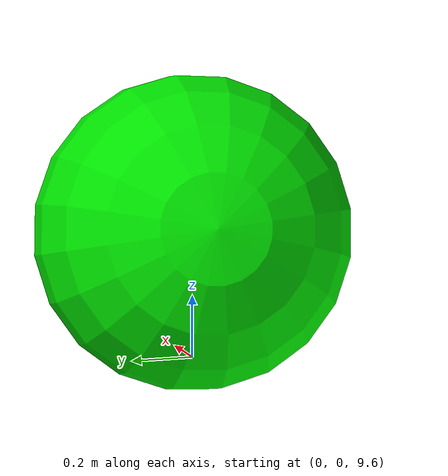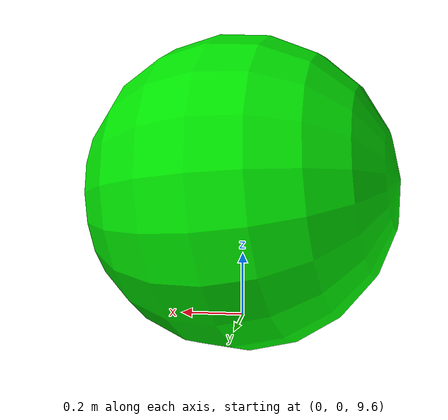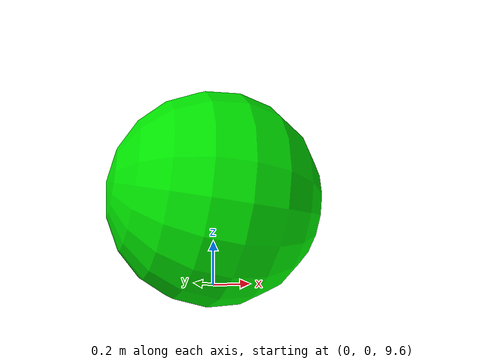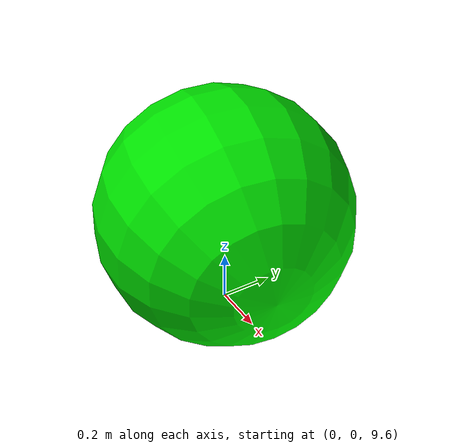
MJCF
<mujoco>
    <option cone="elliptic"/>

    <worldbody>
        <geom type="plane" size="10 10 1" rgba=".9 0 0 1"/>
        <body pos="0 0 10" quat="0.654066 0.209426 -0.636794 -0.350473">
            <inertial pos="0 0 0" mass="1500.000000" diaginertia="150.000000 150.000000 150.000000"/>
            <freejoint/>
            <geom type="sphere" size="0.5" rgba="0 .9 0 1" friction="0.4 0 0"/>
        </body>
    </worldbody>
</mujoco>
